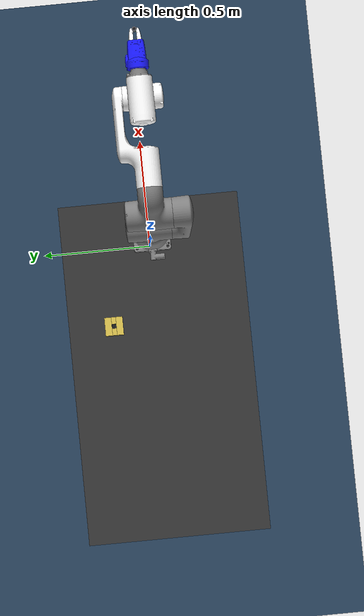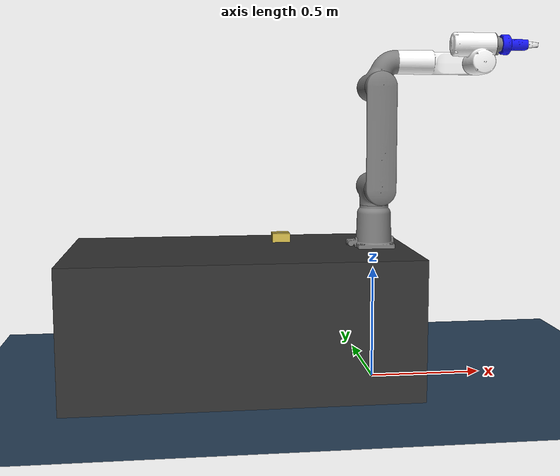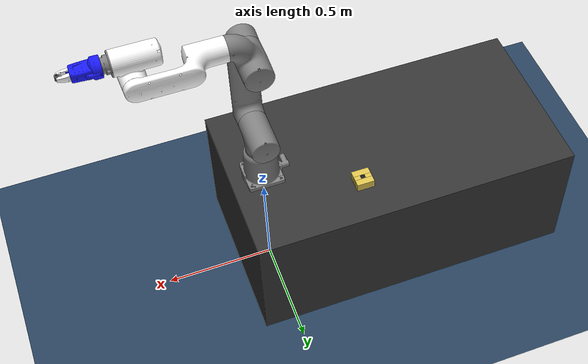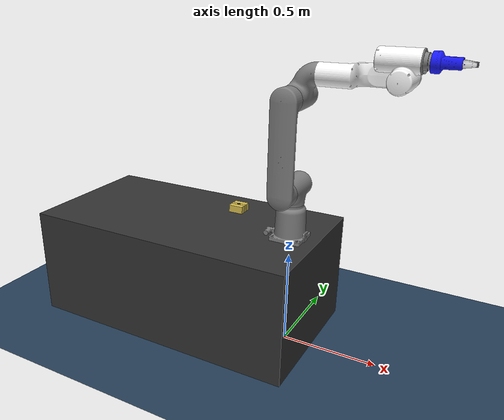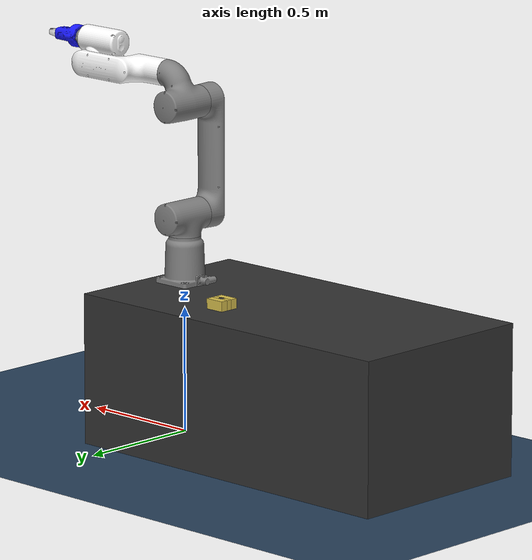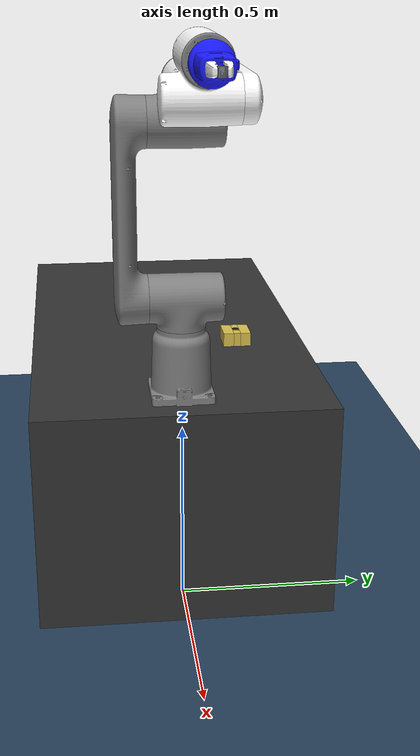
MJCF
<mujoco model="pick and place scene">

	<!-- ── Simulation options ───────────────────────────────────────── -->
	<option
	  gravity    = "0 0 -9.81"
	  solver     = "Newton"
	  timestep   = "0.0005"
	  iterations = "200"
	  tolerance  = "1e-10"
	  noslip_iterations = "10"
	  noslip_tolerance  = "1e-10"
	  integrator = "implicitfast"
  />

	<!-- ── Material-class defaults ──────────────────────────────────── -->
	<default>
		<!-- Shared contact solver params for all geoms -->
		<geom
		  solref  = "0.001 1"
		  solimp  = "0.95 0.99 0.001 0.5 2"
		  condim  = "6"
    />

		<!-- Steel / aluminium pin -->
		<default class="metal">
			<geom
			  friction = "0.30 0.005 0.0001"
			  contype  = "1"
			  conaffinity = "1"
      />
		</default>

		<!-- ABS / nylon insertion box walls -->
		<default class="plastic">
			<geom
			  friction = "0.70 0.010 0.001"
			  contype  = "1"
			  conaffinity = "1"
      />
		</default>

		<!-- Wooden / MDF table surface -->
		<default class="wood">
			<geom
			  friction = "0.80 0.010 0.001"
			  contype  = "1"
			  conaffinity = "1"
      />
		</default>

		<!-- Rubber floor mat -->
		<default class="rubber">
			<geom
			  friction = "1.60 0.020 0.005"
			  contype  = "1"
			  conaffinity = "1"
      />
		</default>
	</default>

	<statistic meansize=".05"/>

	<visual>
		<headlight diffuse="0.6 0.6 0.6" ambient="0.3 0.3 0.3" specular="0 0 0"/>
		<rgba haze="0.15 0.25 0.35 1"/>
	</visual>

	<asset>
		<texture type="skybox" builtin="gradient" rgb1="0.3 0.5 0.7" rgb2="0 0 0"
		  width="512" height="3072"/>
		<texture type="2d" name="groundplane" builtin="checker" mark="edge"
		  rgb1="0.2 0.3 0.4" rgb2="0.1 0.2 0.3" markrgb="0.8 0.8 0.8"
		  width="300" height="300"/>
		<material name="groundplane" texture="groundplane" texuniform="true"
		  texrepeat="5 5" reflectance="0.2"/>
	</asset>

	<include file="assets/gofa_asset.xml"/>

	<worldbody>
		<body pos="0 0 0.6">
			<include file="assets/gofa_body.xml"/>
		</body>

	</worldbody>

	<worldbody>
		<light pos="0 0 2" dir="0 0 -1" directional="true"/>

		<geom name="floor" size="0 0 0.05" type="plane"
		  material="groundplane" class="rubber"/>

		<!-- ── Table ─────────────────────────────────── -->
		<body name="table" pos="-0.6 0 0.3">
			<inertial pos="0 0 0" mass="20" diaginertia="2.0 4.0 4.0"/>
			<geom type="box" size="0.75 0.4 0.3" rgba="0.2 0.2 0.2 1"
			  class="wood"/>
		</body>

		<!-- ── Insertion box (ABS plastic, box-with-hole) ───────────── -->
		<body name="insertion_box" pos="-0.4 0.2 0.62">
			<inertial pos="0 0 0" mass="0.5"
			  diaginertia="3.33e-4 3.33e-4 5.33e-4"/>

			<!-- Visual-only cylinder shows the hole (no collision) -->
			<geom name="hole_visual" type="cylinder" size="0.010 0.021"
			  rgba="0.1 0.1 0.1 1" contype="0" conaffinity="0"/>

			<!-- North wall (+Y) -->
			<geom name="box_wall_n" type="box" size="0.040 0.015 0.020"
			  pos="0  0.025 0" rgba="0.85 0.75 0.3 1" class="plastic"/>

			<!-- South wall (-Y) -->
			<geom name="box_wall_s" type="box" size="0.040 0.015 0.020"
			  pos="0 -0.025 0" rgba="0.85 0.75 0.3 1" class="plastic"/>

			<!-- East wall (+X) -->
			<geom name="box_wall_e" type="box" size="0.015 0.010 0.020"
			  pos=" 0.025 0 0" rgba="0.85 0.75 0.3 1" class="plastic"/>

			<!-- West wall (-X) -->
			<geom name="box_wall_w" type="box" size="0.015 0.010 0.020"
			  pos="-0.025 0 0" rgba="0.85 0.75 0.3 1" class="plastic"/>

			<!-- Bottom floor (cylinder lands here on full insertion) -->
			<geom name="box_floor" type="box" size="0.040 0.040 0.003"
			  pos="0 0 -0.023" rgba="0.85 0.75 0.3 1" class="plastic"/>
		</body>

		<!-- Positioned at ee_site's world pose (robot at qpos=0):
		     base(0 0 0.6) + robot_offset(-0.125 -0.21 0) + ee_site(0.86 0.208 0.899) -->
		<body name="bead" pos="0.735 -0.002 1.499">
			<freejoint/>
			<inertial pos="0 0 0" mass="0.03" diaginertia="1.94e-6 1.94e-6 1.88e-6"/>

			<!-- Visual-only cylinder shows the through-hole (no collision) -->
			<geom name="bead_hole_visual" type="cylinder" size="0.005 0.010"
			  rgba="0.1 0.1 0.1 1" contype="0" conaffinity="0"/>

			<!-- Tube wall: ring of 24 box segments at mean radius 7.5mm -->
			<geom name="bead_seg_00" type="box" size="0.0025 0.0011 0.010" pos=" 0.0075  0.0000 0" euler="0 0 0"   class="metal" rgba="0.6 0.6 0.65 1"/>
			<geom name="bead_seg_01" type="box" size="0.0025 0.0011 0.010" pos=" 0.0072  0.0019 0" euler="0 0 15"  class="metal" rgba="0.6 0.6 0.65 1"/>
			<geom name="bead_seg_02" type="box" size="0.0025 0.0011 0.010" pos=" 0.0065  0.0038 0" euler="0 0 30"  class="metal" rgba="0.6 0.6 0.65 1"/>
			<geom name="bead_seg_03" type="box" size="0.0025 0.0011 0.010" pos=" 0.0053  0.0053 0" euler="0 0 45"  class="metal" rgba="0.6 0.6 0.65 1"/>
			<geom name="bead_seg_04" type="box" size="0.0025 0.0011 0.010" pos=" 0.0038  0.0065 0" euler="0 0 60"  class="metal" rgba="0.6 0.6 0.65 1"/>
			<geom name="bead_seg_05" type="box" size="0.0025 0.0011 0.010" pos=" 0.0019  0.0072 0" euler="0 0 75"  class="metal" rgba="0.6 0.6 0.65 1"/>
			<geom name="bead_seg_06" type="box" size="0.0025 0.0011 0.010" pos=" 0.0000  0.0075 0" euler="0 0 90"  class="metal" rgba="0.6 0.6 0.65 1"/>
			<geom name="bead_seg_07" type="box" size="0.0025 0.0011 0.010" pos="-0.0019  0.0072 0" euler="0 0 105" class="metal" rgba="0.6 0.6 0.65 1"/>
			<geom name="bead_seg_08" type="box" size="0.0025 0.0011 0.010" pos="-0.0038  0.0065 0" euler="0 0 120" class="metal" rgba="0.6 0.6 0.65 1"/>
			<geom name="bead_seg_09" type="box" size="0.0025 0.0011 0.010" pos="-0.0053  0.0053 0" euler="0 0 135" class="metal" rgba="0.6 0.6 0.65 1"/>
			<geom name="bead_seg_10" type="box" size="0.0025 0.0011 0.010" pos="-0.0065  0.0038 0" euler="0 0 150" class="metal" rgba="0.6 0.6 0.65 1"/>
			<geom name="bead_seg_11" type="box" size="0.0025 0.0011 0.010" pos="-0.0072  0.0019 0" euler="0 0 165" class="metal" rgba="0.6 0.6 0.65 1"/>
			<geom name="bead_seg_12" type="box" size="0.0025 0.0011 0.010" pos="-0.0075  0.0000 0" euler="0 0 180" class="metal" rgba="0.6 0.6 0.65 1"/>
			<geom name="bead_seg_13" type="box" size="0.0025 0.0011 0.010" pos="-0.0072 -0.0019 0" euler="0 0 195" class="metal" rgba="0.6 0.6 0.65 1"/>
			<geom name="bead_seg_14" type="box" size="0.0025 0.0011 0.010" pos="-0.0065 -0.0038 0" euler="0 0 210" class="metal" rgba="0.6 0.6 0.65 1"/>
			<geom name="bead_seg_15" type="box" size="0.0025 0.0011 0.010" pos="-0.0053 -0.0053 0" euler="0 0 225" class="metal" rgba="0.6 0.6 0.65 1"/>
			<geom name="bead_seg_16" type="box" size="0.0025 0.0011 0.010" pos="-0.0038 -0.0065 0" euler="0 0 240" class="metal" rgba="0.6 0.6 0.65 1"/>
			<geom name="bead_seg_17" type="box" size="0.0025 0.0011 0.010" pos="-0.0019 -0.0072 0" euler="0 0 255" class="metal" rgba="0.6 0.6 0.65 1"/>
			<geom name="bead_seg_18" type="box" size="0.0025 0.0011 0.010" pos=" 0.0000 -0.0075 0" euler="0 0 270" class="metal" rgba="0.6 0.6 0.65 1"/>
			<geom name="bead_seg_19" type="box" size="0.0025 0.0011 0.010" pos=" 0.0019 -0.0072 0" euler="0 0 285" class="metal" rgba="0.6 0.6 0.65 1"/>
			<geom name="bead_seg_20" type="box" size="0.0025 0.0011 0.010" pos=" 0.0038 -0.0065 0" euler="0 0 300" class="metal" rgba="0.6 0.6 0.65 1"/>
			<geom name="bead_seg_21" type="box" size="0.0025 0.0011 0.010" pos=" 0.0053 -0.0053 0" euler="0 0 315" class="metal" rgba="0.6 0.6 0.65 1"/>
			<geom name="bead_seg_22" type="box" size="0.0025 0.0011 0.010" pos=" 0.0065 -0.0038 0" euler="0 0 330" class="metal" rgba="0.6 0.6 0.65 1"/>
			<geom name="bead_seg_23" type="box" size="0.0025 0.0011 0.010" pos=" 0.0072 -0.0019 0" euler="0 0 345" class="metal" rgba="0.6 0.6 0.65 1"/>
		</body>

		<!-- External camera -->
		<camera
		  name       = "external_camera"
		  pos        = "-0.5 0 1.3"
		  euler      = "0 -15 -90"
		  mode       = "fixed"
		  resolution = "1280 720"
		  fovy       = "69"
    />
	</worldbody>

	<!-- ── Constraints ──────────────────────────────────────────────── -->
	<equality>
		<connect name="bead_ee_connect" body1="bead" body2="gripper" anchor="0 0 0"/>
	</equality>

	<!-- ── Sensors ──────────────────────────────────────────────────── -->
	<sensor>
		<jointactuatorfrc name="torque_sensor_1" joint="joint1"/>
		<jointactuatorfrc name="torque_sensor_2" joint="joint2"/>
		<jointactuatorfrc name="torque_sensor_3" joint="joint3"/>
		<jointactuatorfrc name="torque_sensor_4" joint="joint4"/>
		<jointactuatorfrc name="torque_sensor_5" joint="joint5"/>
		<jointactuatorfrc name="torque_sensor_6" joint="joint6"/>
	</sensor>

</mujoco>

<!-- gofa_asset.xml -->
<mujoco>
<compiler meshdir="assets/mesh" inertiafromgeom="true"/>

<asset>
	<mesh name="link0" file="CRB15000_5kg-950_OmniCore_rev00_LINK0_CAD.STL" />
	<mesh name="link1" file="CRB15000_5kg-950_OmniCore_rev00_LINK1_CAD.STL" />
	<mesh name="link2" file="CRB15000_5kg-950_OmniCore_rev00_LINK2_CAD.STL" />
	<mesh name="link3" file="CRB15000_5kg-950_OmniCore_rev00_LINK3_CAD.STL" />
	<mesh name="link4" file="CRB15000_5kg-950_OmniCore_rev00_LINK4_CAD.STL" />
	<mesh name="link5" file="CRB15000_5kg-950_OmniCore_rev00_LINK5_CAD.STL" />
	<mesh name="link6" file="CRB15000_5kg-950_OmniCore_rev00_LINK6_CAD.STL" />
	<mesh name="gripper_body" file="gripper_body.STL" />
	<mesh name="finger1" file="finger1.STL" />
	<mesh name="finger2" file="finger2.STL" />

	<!-- Add checkerboard texture and material -->
	<texture name="checker_tex" type="2d" builtin="checker" width="512" height="512" />
	<material name="checker_mat" texture="checker_tex" texrepeat="8 8" rgba="1 1 1 1"/>
</asset>

	<actuator>
		<position name="joint1_act" joint="joint1" ctrlrange="0 6.28" kp="1000" dampratio="1"/>
		<position name="joint2_act" joint="joint2" ctrlrange="-3.14 3.14" kp="1000" dampratio="1"/>
		<position name="joint3_act" joint="joint3" ctrlrange="-3.14 3.14" kp="1000" dampratio="1"/>
		<position name="joint4_act" joint="joint4" ctrlrange="-3.14 3.14" kp="1000" dampratio="1"/>
		<position name="joint5_act" joint="joint5" ctrlrange="-3.14 3.14" kp="1000" dampratio="1"/>
		<position name="joint6_act" joint="joint6" ctrlrange="-3.14 3.14" kp="50" dampratio="1"/>
		<position name="finger1_act" joint="joint_finger1" ctrllimited="true" ctrlrange="0 0.012" kp="100" dampratio="1"/>
		<position name="finger2_act" joint="joint_finger2" ctrllimited="true" ctrlrange="0 0.012" kp="100" dampratio="1"/>
	</actuator>

	<contact>
		<exclude body1="link0" body2="link1"/>
		<exclude body1="link1" body2="link2"/>
		<exclude body1="link2" body2="link3"/>
		<exclude body1="link3" body2="link4"/>
		<exclude body1="link4" body2="link5"/>
		<exclude body1="link5" body2="link6"/>
		<exclude body1="link6" body2="gripper"/>
	</contact>

</mujoco>

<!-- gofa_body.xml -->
<mujoco>
	<frame name="robot_offset" pos="-0.125 -0.21 0">
		<body name="robot">
			<body name="link0" gravcomp="1">
				<geom type="mesh" mesh="link0" rgba ="0.5 0.5 0.5 1" gap="0.01" mass="3.50083457958494"/>

				<body name="link1" gravcomp="1">
					<joint name="joint1" type="hinge" axis="0 0 1" range="0 360" limited="true" pos="0.125 0.21 0"/>
					<geom type="mesh" mesh="link1" rgba ="0.5 0.5 0.5 1" gap="0.01" mass="2.76743491139404"/>

					<body name="link2" gravcomp="1">
						<joint name="joint2" type="hinge" axis="0 1 0" range="-90 90" limited="true" pos="0.125 0.21 0.265"/>
						<geom type="mesh" mesh="link2" rgba ="0.5 0.5 0.5 1" gap="0.01" mass="4.28904168670464"/>

						<body name="link3" gravcomp="1">
							<joint name="joint3" type="hinge" axis="0 1 0" range="-90 90" limited="true" pos="0.125 0.21 0.71"/>
							<geom type="mesh" mesh="link3" rgba ="0.5 0.5 0.5 1" gap="0.01" mass="3.38333107992875"/>

							<body name="link4" gravcomp="1">
								<joint name="joint4" type="hinge" axis="1 0 0" range="-90 90" limited="true" pos="0.125 0.205 0.8185"/>
								<geom type="mesh" mesh="link4" rgba ="1 1 1 1" gap="0.01" mass="2.77857535641324"/>

								<body name="link5" gravcomp="1">
									<joint name="joint5" type="hinge" axis="0 1 0" range="-90 90" limited="true" pos="0.5959 0.205 0.8183"/>
									<geom type="mesh" mesh="link5" rgba ="1 1 1 1" gap="0.01" mass="3.01105814739001"/>
									<body name="realsense" pos="0.65 0.205 0.965" gravcomp="1">
										<!-- Wrist mounted camera-->
										<camera name="camera_depth" pos="0 0.015 0" euler="0 -90 -90" resolution="1280 720" fovy="58"/>
										<camera name="camera_rgb" euler=" 0 -90 -90" resolution="1280 720" fovy="42"/>
									</body>

									<body name="link6" gravcomp="1">
										<joint name="joint6" type="hinge" axis="1 0 0" range="-360 360" limited="true" pos="0.125 0.208 0.899"/>
										<geom type="mesh" mesh="link6" mass="0.146500988015653" solref="0.002 1" solimp="0.99 0.99 0.001" friction="2 1 1"/>

										<body name="gripper" gravcomp="1">
											<geom type="mesh" mesh="gripper_body" rgba="0.1 0.1 1 1" mass="0.4" contype="1" conaffinity="1"/>
											<site  name="ee_site" pos="0.86 0.208 0.899" size="0.01" rgba="0 1 0 1"/>
											<site  name="ee_site_axis" pos="0.86 0.208 0.949" size="0.005" rgba="0 0 0 0"/>
											<body>
												<joint name="joint_finger1" type="slide" axis="0 -1 0" range="0 0.012"  margin="0" limited="true" pos="0.125 0.21 0"/>
												<geom type="mesh" mesh="finger1" rgba="1 1 1 1" solref="0.002 1" solimp="0.99 0.99 0.001" friction="2 1 1" contype="1" conaffinity="1"/>
											</body>

											<body>
												<joint name="joint_finger2" type="slide" axis="0 1 0" range="0 0.012"  margin="0" limited="true" pos="0.125 0.21 0"/>
												<geom type="mesh" mesh="finger2" rgba="1 1 1 1" solref="0.002 1" solimp="0.99 0.99 0.001" friction="2 1 1" contype="1" conaffinity="1"/>
											</body>

										</body>
									</body>
								</body>
							</body>
						</body>
					</body>
				</body>
			</body>

		</body>
	</frame>

</mujoco>
